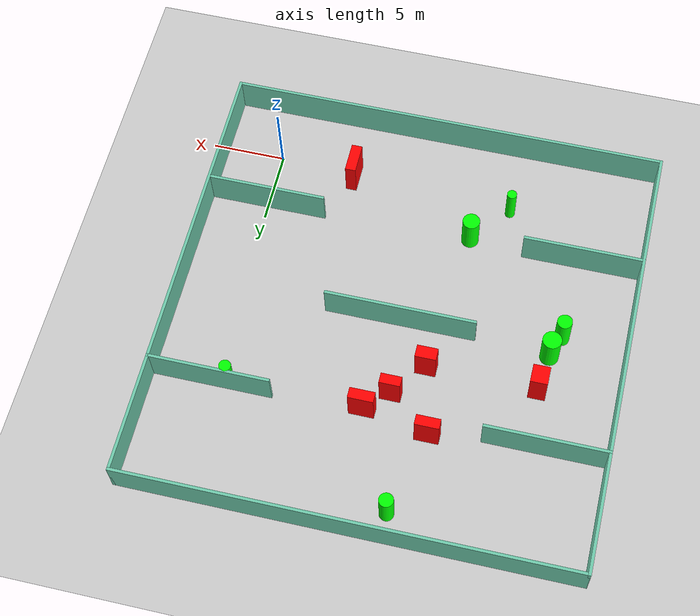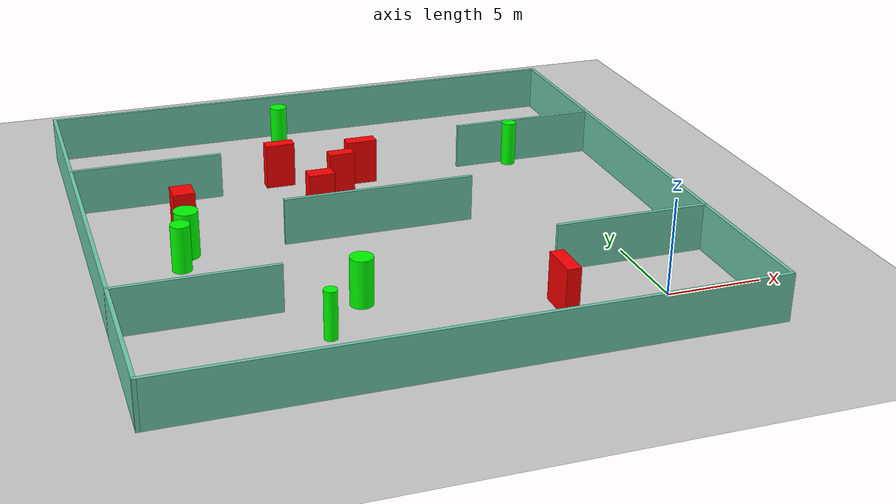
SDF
<sdf version="1.7">
 <world name="default">
  <light name="sun" type="directional">
   <pose>0 0 10 0 -0 0</pose>
   <diffuse>0.8 0.8 0.8 1</diffuse>
   <specular>0.2 0.2 0.2 1</specular>
   <attenuation>
    <range>1000</range>
    <constant>0.9</constant>
    <linear>0.01</linear>
    <quadratic>0.001</quadratic>
   </attenuation>
   <direction>-0.5 0.1 -0.9</direction>
   <spot><inner_angle>0</inner_angle><outer_angle>0</outer_angle><falloff>0</falloff></spot>
  </light>
  <model name="ground_plane">
   <static>1</static>
   <link name="link">
    <collision name="collision">
     <geometry><plane><normal>0 0 1</normal><size>100 100</size></plane></geometry>
     <surface>
      <contact><collide_bitmask>65535</collide_bitmask></contact>
      <friction><ode><mu>100</mu><mu2>50</mu2></ode></friction>
     </surface>
    </collision>
    <visual name="visual">
     <cast_shadows>0</cast_shadows>
     <geometry><plane><normal>0 0 1</normal><size>100 100</size></plane></geometry>
     <material>
      <script><uri>file://media/materials/scripts/gazebo.material</uri><name>Gazebo/Grey</name></script>
     </material>
    </visual>
   </link>
  </model>
  <gravity>0 0 -9.8</gravity>
  <magnetic_field>6e-06 2.3e-05 -4.2e-05</magnetic_field>
  <atmosphere type="adiabatic"/>
  <physics type="ode">
   <max_step_size>0.001</max_step_size>
   <real_time_factor>1</real_time_factor>
   <real_time_update_rate>1000</real_time_update_rate>
  </physics>
  <scene><ambient>0.4 0.4 0.4 1</ambient><background>0.7 0.7 0.7 1</background><shadows>1</shadows></scene>
  <spherical_coordinates>
   <surface_model>EARTH_WGS84</surface_model>
   <latitude_deg>0</latitude_deg>
   <longitude_deg>0</longitude_deg>
   <elevation>0</elevation>
   <heading_deg>0</heading_deg>
  </spherical_coordinates>
  <model name="my_base_walls">
   <link name="Wall_10">
    <collision name="Wall_10_Collision">
     <geometry><box><size>8.2 0.2 2.5</size></box></geometry>
     <pose>0 0 1.25 0 -0 0</pose>
    </collision>
    <visual name="Wall_10_Visual">
     <pose>0 0 1.25 0 -0 0</pose>
     <geometry><box><size>8.2 0.2 2.5</size></box></geometry>
     <material>
      <script><uri>file://media/materials/scripts/gazebo.material</uri><name>Gazebo/Grey</name></script>
      <ambient>0.435294 0.796078 0.67451 1</ambient>
     </material>
     <meta><layer>0</layer></meta>
    </visual>
    <pose>-11 -7 0 0 -0 0</pose>
   </link>
   <link name="Wall_12">
    <collision name="Wall_12_Collision">
     <geometry><box><size>8.2 0.2 2.5</size></box></geometry>
     <pose>0 0 1.25 0 -0 0</pose>
    </collision>
    <visual name="Wall_12_Visual">
     <pose>0 0 1.25 0 -0 0</pose>
     <geometry><box><size>8.2 0.2 2.5</size></box></geometry>
     <material>
      <script><uri>file://media/materials/scripts/gazebo.material</uri><name>Gazebo/Grey</name></script>
      <ambient>0.435294 0.796078 0.67451 1</ambient>
     </material>
     <meta><layer>0</layer></meta>
    </visual>
    <pose>-11 7 0 0 -0 0</pose>
   </link>
   <link name="Wall_14">
    <collision name="Wall_14_Collision">
     <geometry><box><size>8.2 0.2 2.5</size></box></geometry>
     <pose>0 0 1.25 0 -0 0</pose>
    </collision>
    <visual name="Wall_14_Visual">
     <pose>0 0 1.25 0 -0 0</pose>
     <geometry><box><size>8.2 0.2 2.5</size></box></geometry>
     <material>
      <script><uri>file://media/materials/scripts/gazebo.material</uri><name>Gazebo/Grey</name></script>
      <ambient>0.435294 0.796078 0.67451 1</ambient>
     </material>
     <meta><layer>0</layer></meta>
    </visual>
    <pose>11 7 0 0 -0 3.14159</pose>
   </link>
   <link name="Wall_16">
    <collision name="Wall_16_Collision">
     <geometry><box><size>10.2 0.2 2.5</size></box></geometry>
     <pose>0 0 1.25 0 -0 0</pose>
    </collision>
    <visual name="Wall_16_Visual">
     <pose>0 0 1.25 0 -0 0</pose>
     <geometry><box><size>10.2 0.2 2.5</size></box></geometry>
     <material>
      <script><uri>file://media/materials/scripts/gazebo.material</uri><name>Gazebo/Grey</name></script>
      <ambient>0.435294 0.796078 0.67451 1</ambient>
     </material>
     <meta><layer>0</layer></meta>
    </visual>
    <pose>0 0 0 0 -0 3.14159</pose>
   </link>
   <link name="Wall_2">
    <collision name="Wall_2_Collision">
     <geometry><box><size>30.2 0.2 2.5</size></box></geometry>
     <pose>0 0 1.25 0 -0 0</pose>
    </collision>
    <visual name="Wall_2_Visual">
     <pose>0 0 1.25 0 -0 0</pose>
     <geometry><box><size>30.2 0.2 2.5</size></box></geometry>
     <material>
      <script><uri>file://media/materials/scripts/gazebo.material</uri><name>Gazebo/Grey</name></script>
      <ambient>0.435294 0.796078 0.67451 1</ambient>
     </material>
     <meta><layer>0</layer></meta>
    </visual>
    <pose>0 -15 0 0 -0 3.14159</pose>
   </link>
   <link name="Wall_3">
    <collision name="Wall_3_Collision">
     <geometry><box><size>30.2 0.2 2.5</size></box></geometry>
     <pose>0 0 1.25 0 -0 0</pose>
    </collision>
    <visual name="Wall_3_Visual">
     <pose>0 0 1.25 0 -0 0</pose>
     <geometry><box><size>30.2 0.2 2.5</size></box></geometry>
     <material>
      <script><uri>file://media/materials/scripts/gazebo.material</uri><name>Gazebo/Grey</name></script>
      <ambient>0.435294 0.796078 0.67451 1</ambient>
     </material>
     <meta><layer>0</layer></meta>
    </visual>
    <pose>-15 0 0 0 -0 1.5708</pose>
   </link>
   <link name="Wall_4">
    <collision name="Wall_4_Collision">
     <geometry><box><size>30.2 0.2 2.5</size></box></geometry>
     <pose>0 0 1.25 0 -0 0</pose>
    </collision>
    <visual name="Wall_4_Visual">
     <pose>0 0 1.25 0 -0 0</pose>
     <geometry><box><size>30.2 0.2 2.5</size></box></geometry>
     <material>
      <script><uri>file://media/materials/scripts/gazebo.material</uri><name>Gazebo/Grey</name></script>
      <ambient>0.435294 0.796078 0.67451 1</ambient>
     </material>
     <meta><layer>0</layer></meta>
    </visual>
    <pose>0 15 0 0 -0 0</pose>
   </link>
   <link name="Wall_6">
    <collision name="Wall_6_Collision">
     <geometry><box><size>30.2 0.2 2.5</size></box></geometry>
     <pose>0 0 1.25 0 -0 0</pose>
    </collision>
    <visual name="Wall_6_Visual">
     <pose>0 0 1.25 0 -0 0</pose>
     <geometry><box><size>30.2 0.2 2.5</size></box></geometry>
     <material>
      <script><uri>file://media/materials/scripts/gazebo.material</uri><name>Gazebo/Grey</name></script>
      <ambient>0.435294 0.796078 0.67451 1</ambient>
     </material>
     <meta><layer>0</layer></meta>
    </visual>
    <pose>15 0 0 0 -0 1.5708</pose>
   </link>
   <link name="Wall_8">
    <collision name="Wall_8_Collision">
     <geometry><box><size>8.2 0.2 2.5</size></box></geometry>
     <pose>0 0 1.25 0 -0 0</pose>
    </collision>
    <visual name="Wall_8_Visual">
     <pose>0 0 1.25 0 -0 0</pose>
     <geometry><box><size>8.2 0.2 2.5</size></box></geometry>
     <material>
      <script><uri>file://media/materials/scripts/gazebo.material</uri><name>Gazebo/Grey</name></script>
      <ambient>0.435294 0.796078 0.67451 1</ambient>
     </material>
     <meta><layer>0</layer></meta>
    </visual>
    <pose>11 -7 0 0 -0 3.14159</pose>
   </link>
   <static>1</static>
   <pose>-11 11 0 0 -0 0</pose>
  </model>
  <model name="cylinder1">
   <static>1</static>
   <link name="link">
    <inertial>
     <mass>1</mass>
     <inertia><ixx>0.5</ixx><ixy>0</ixy><ixz>0</ixz><iyy>0.5</iyy><iyz>0</iyz><izz>1</izz></inertia>
    </inertial>
    <collision name="collision">
     <geometry><cylinder><radius>0.506157086833654</radius><length>2.5</length></cylinder></geometry>
    </collision>
    <visual name="visual">
     <geometry><cylinder><radius>0.506157086833654</radius><length>2.5</length></cylinder></geometry>
     <material>
      <ambient>0 1 0 1</ambient>
      <diffuse>0 1 0 1</diffuse>
      <specular>0.1 0.1 0.1 1</specular>
      <emissive>0 0 0 0</emissive>
     </material>
    </visual>
   </link>
   <pose>-21.667633193556647 9.68612565345746 1.25 0 0 0</pose>
  </model>
  <model name="cylinder2">
   <static>1</static>
   <link name="link">
    <inertial>
     <mass>1</mass>
     <inertia><ixx>0.5</ixx><ixy>0</ixy><ixz>0</ixz><iyy>0.5</iyy><iyz>0</iyz><izz>1</izz></inertia>
    </inertial>
    <collision name="collision">
     <geometry><cylinder><radius>0.6296157110577862</radius><length>2.5</length></cylinder></geometry>
    </collision>
    <visual name="visual">
     <geometry><cylinder><radius>0.6296157110577862</radius><length>2.5</length></cylinder></geometry>
     <material>
      <ambient>0 1 0 1</ambient>
      <diffuse>0 1 0 1</diffuse>
      <specular>0.1 0.1 0.1 1</specular>
      <emissive>0 0 0 0</emissive>
     </material>
    </visual>
   </link>
   <pose>-21.100203102686173 11.17654034556029 1.25 0 0 0</pose>
  </model>
  <model name="cylinder3">
   <static>1</static>
   <link name="link">
    <inertial>
     <mass>1</mass>
     <inertia><ixx>0.5</ixx><ixy>0</ixy><ixz>0</ixz><iyy>0.5</iyy><iyz>0</iyz><izz>1</izz></inertia>
    </inertial>
    <collision name="collision">
     <geometry><cylinder><radius>0.4043322369040953</radius><length>2.5</length></cylinder></geometry>
    </collision>
    <visual name="visual">
     <geometry><cylinder><radius>0.4043322369040953</radius><length>2.5</length></cylinder></geometry>
     <material>
      <ambient>0 1 0 1</ambient>
      <diffuse>0 1 0 1</diffuse>
      <specular>0.1 0.1 0.1 1</specular>
      <emissive>0 0 0 0</emissive>
     </material>
    </visual>
   </link>
   <pose>-1.0468893475214784 17.627943220198496 1.25 0 0 0</pose>
  </model>
  <model name="cylinder4">
   <static>1</static>
   <link name="link">
    <inertial>
     <mass>1</mass>
     <inertia><ixx>0.5</ixx><ixy>0</ixy><ixz>0</ixz><iyy>0.5</iyy><iyz>0</iyz><izz>1</izz></inertia>
    </inertial>
    <collision name="collision">
     <geometry><cylinder><radius>0.5857750814390196</radius><length>2.5</length></cylinder></geometry>
    </collision>
    <visual name="visual">
     <geometry><cylinder><radius>0.5857750814390196</radius><length>2.5</length></cylinder></geometry>
     <material>
      <ambient>0 1 0 1</ambient>
      <diffuse>0 1 0 1</diffuse>
      <specular>0.1 0.1 0.1 1</specular>
      <emissive>0 0 0 0</emissive>
     </material>
    </visual>
   </link>
   <pose>-14.228233224221 3.582626108938948 1.25 0 0 0</pose>
  </model>
  <model name="cylinder5">
   <static>1</static>
   <link name="link">
    <inertial>
     <mass>1</mass>
     <inertia><ixx>0.5</ixx><ixy>0</ixy><ixz>0</ixz><iyy>0.5</iyy><iyz>0</iyz><izz>1</izz></inertia>
    </inertial>
    <collision name="collision">
     <geometry><cylinder><radius>0.33221136066800416</radius><length>2.5</length></cylinder></geometry>
    </collision>
    <visual name="visual">
     <geometry><cylinder><radius>0.33221136066800416</radius><length>2.5</length></cylinder></geometry>
     <material>
      <ambient>0 1 0 1</ambient>
      <diffuse>0 1 0 1</diffuse>
      <specular>0.1 0.1 0.1 1</specular>
      <emissive>0 0 0 0</emissive>
     </material>
    </visual>
   </link>
   <pose>-16.498642736234338 0.8775598277735628 1.25 0 0 0</pose>
  </model>
  <model name="cylinder6">
   <static>1</static>
   <link name="link">
    <inertial>
     <mass>1</mass>
     <inertia><ixx>0.5</ixx><ixy>0</ixy><ixz>0</ixz><iyy>0.5</iyy><iyz>0</iyz><izz>1</izz></inertia>
    </inertial>
    <collision name="collision">
     <geometry><cylinder><radius>0.4769806433182373</radius><length>2.5</length></cylinder></geometry>
    </collision>
    <visual name="visual">
     <geometry><cylinder><radius>0.4769806433182373</radius><length>2.5</length></cylinder></geometry>
     <material>
      <ambient>0 1 0 1</ambient>
      <diffuse>0 1 0 1</diffuse>
      <specular>0.1 0.1 0.1 1</specular>
      <emissive>0 0 0 0</emissive>
     </material>
    </visual>
   </link>
   <pose>-13.146528804179386 24.16495544957459 1.25 0 0 0</pose>
  </model>
  <model name="box1">
   <static>1</static>
   <link name="link">
    <inertial>
     <mass>1</mass>
     <inertia><ixx>0.083</ixx><ixy>0</ixy><ixz>0</ixz><iyy>0.083</iyy><iyz>0</iyz><izz>0.083</izz></inertia>
    </inertial>
    <collision name="collision">
     <geometry><box><size>1.3969897198860926 0.8318415209230643 2.5</size></box></geometry>
    </collision>
    <visual name="visual">
     <geometry><box><size>1.3969897198860926 0.8318415209230643 2.5</size></box></geometry>
     <material>
      <ambient>1 0 0 1</ambient>
      <diffuse>1 0 0 1</diffuse>
      <specular>0.1 0.1 0.1 1</specular>
      <emissive>0 0 0 0</emissive>
     </material>
    </visual>
    <sensor name="my_contact" type="contact">
     <contact><collision>box_collision</collision><topic>__default_topic__</topic></contact>
    </sensor>
   </link>
   <pose>-13.398826674422619 13.855400490995876 1.25 0 0 0</pose>
  </model>
  <model name="box2">
   <static>1</static>
   <link name="link">
    <inertial>
     <mass>1</mass>
     <inertia><ixx>0.083</ixx><ixy>0</ixy><ixz>0</ixz><iyy>0.083</iyy><iyz>0</iyz><izz>0.083</izz></inertia>
    </inertial>
    <collision name="collision">
     <geometry><box><size>1.6153252592553349 0.6934326048829804 2.5</size></box></geometry>
    </collision>
    <visual name="visual">
     <geometry><box><size>1.6153252592553349 0.6934326048829804 2.5</size></box></geometry>
     <material>
      <ambient>1 0 0 1</ambient>
      <diffuse>1 0 0 1</diffuse>
      <specular>0.1 0.1 0.1 1</specular>
      <emissive>0 0 0 0</emissive>
     </material>
    </visual>
    <sensor name="my_contact" type="contact">
     <contact><collision>box_collision</collision><topic>__default_topic__</topic></contact>
    </sensor>
   </link>
   <pose>-14.497596880651216 18.545080251493836 1.25 0 0 0</pose>
  </model>
  <model name="box3">
   <static>1</static>
   <link name="link">
    <inertial>
     <mass>1</mass>
     <inertia><ixx>0.083</ixx><ixy>0</ixy><ixz>0</ixz><iyy>0.083</iyy><iyz>0</iyz><izz>0.083</izz></inertia>
    </inertial>
    <collision name="collision">
     <geometry><box><size>1.1467640230655896 1.2396106684172459 2.5</size></box></geometry>
    </collision>
    <visual name="visual">
     <geometry><box><size>1.1467640230655896 1.2396106684172459 2.5</size></box></geometry>
     <material>
      <ambient>1 0 0 1</ambient>
      <diffuse>1 0 0 1</diffuse>
      <specular>0.1 0.1 0.1 1</specular>
      <emissive>0 0 0 0</emissive>
     </material>
    </visual>
    <sensor name="my_contact" type="contact">
     <contact><collision>box_collision</collision><topic>__default_topic__</topic></contact>
    </sensor>
   </link>
   <pose>-20.80522008728561 13.742064958487482 1.25 0 0 0</pose>
  </model>
  <model name="box4">
   <static>1</static>
   <link name="link">
    <inertial>
     <mass>1</mass>
     <inertia><ixx>0.083</ixx><ixy>0</ixy><ixz>0</ixz><iyy>0.083</iyy><iyz>0</iyz><izz>0.083</izz></inertia>
    </inertial>
    <collision name="collision">
     <geometry><box><size>1.3943172039601477 0.6812090111359561 2.5</size></box></geometry>
    </collision>
    <visual name="visual">
     <geometry><box><size>1.3943172039601477 0.6812090111359561 2.5</size></box></geometry>
     <material>
      <ambient>1 0 0 1</ambient>
      <diffuse>1 0 0 1</diffuse>
      <specular>0.1 0.1 0.1 1</specular>
      <emissive>0 0 0 0</emissive>
     </material>
    </visual>
    <sensor name="my_contact" type="contact">
     <contact><collision>box_collision</collision><topic>__default_topic__</topic></contact>
    </sensor>
   </link>
   <pose>-11.57307214141013 16.239818879608663 1.25 0 0 0</pose>
  </model>
  <model name="box5">
   <static>1</static>
   <link name="link">
    <inertial>
     <mass>1</mass>
     <inertia><ixx>0.083</ixx><ixy>0</ixy><ixz>0</ixz><iyy>0.083</iyy><iyz>0</iyz><izz>0.083</izz></inertia>
    </inertial>
    <collision name="collision">
     <geometry><box><size>1.694344530610634 0.7229258503108976 2.5</size></box></geometry>
    </collision>
    <visual name="visual">
     <geometry><box><size>1.694344530610634 0.7229258503108976 2.5</size></box></geometry>
     <material>
      <ambient>1 0 0 1</ambient>
      <diffuse>1 0 0 1</diffuse>
      <specular>0.1 0.1 0.1 1</specular>
      <emissive>0 0 0 0</emissive>
     </material>
    </visual>
    <sensor name="my_contact" type="contact">
     <contact><collision>box_collision</collision><topic>__default_topic__</topic></contact>
    </sensor>
   </link>
   <pose>-10.022369078341557 17.678153122587347 1.25 0 0 0</pose>
  </model>
  <model name="box6">
   <static>1</static>
   <link name="link">
    <inertial>
     <mass>1</mass>
     <inertia><ixx>0.083</ixx><ixy>0</ixy><ixz>0</ixz><iyy>0.083</iyy><iyz>0</iyz><izz>0.083</izz></inertia>
    </inertial>
    <collision name="collision">
     <geometry><box><size>0.7236654528586144 2.0225163040395406 2.5</size></box></geometry>
    </collision>
    <visual name="visual">
     <geometry><box><size>0.7236654528586144 2.0225163040395406 2.5</size></box></geometry>
     <material>
      <ambient>1 0 0 1</ambient>
      <diffuse>1 0 0 1</diffuse>
      <specular>0.1 0.1 0.1 1</specular>
      <emissive>0 0 0 0</emissive>
     </material>
    </visual>
    <sensor name="my_contact" type="contact">
     <contact><collision>box_collision</collision><topic>__default_topic__</topic></contact>
    </sensor>
   </link>
   <pose>-5.299143447051804 0.38299787008285824 1.25 0 0 0</pose>
  </model>
 </world>
</sdf>
